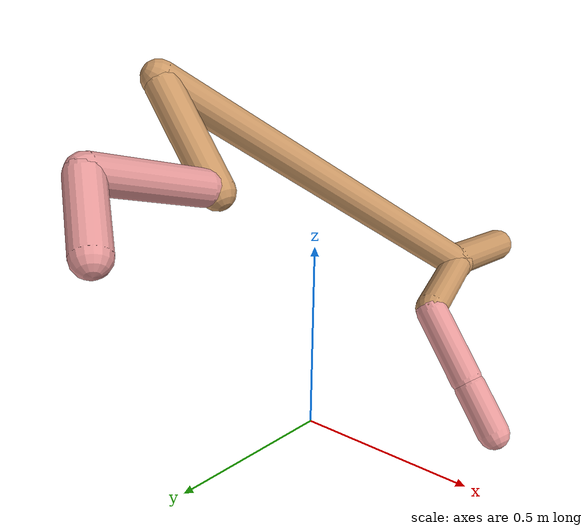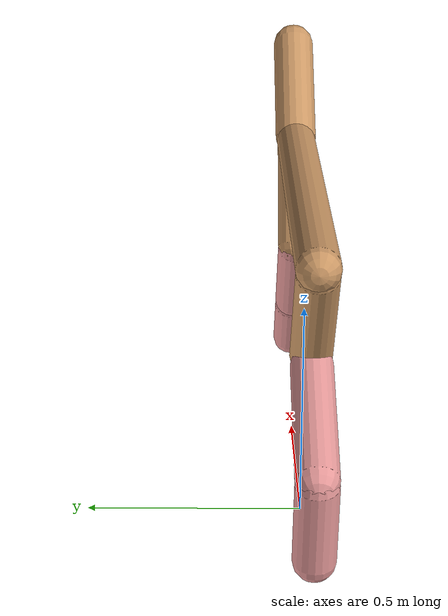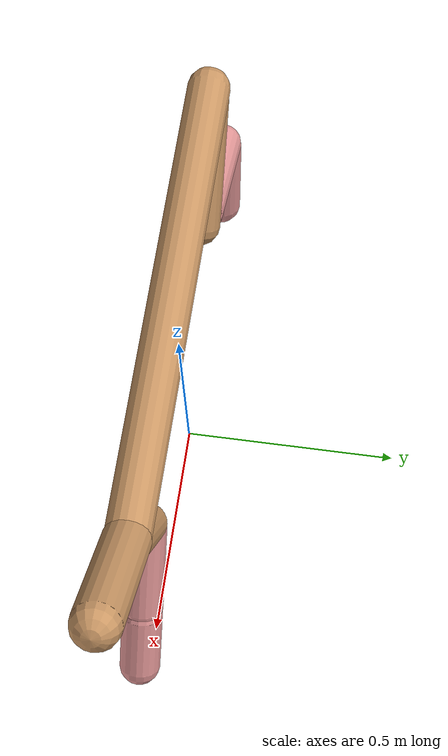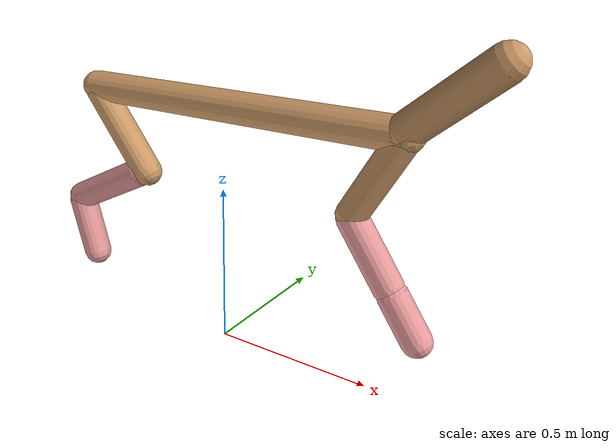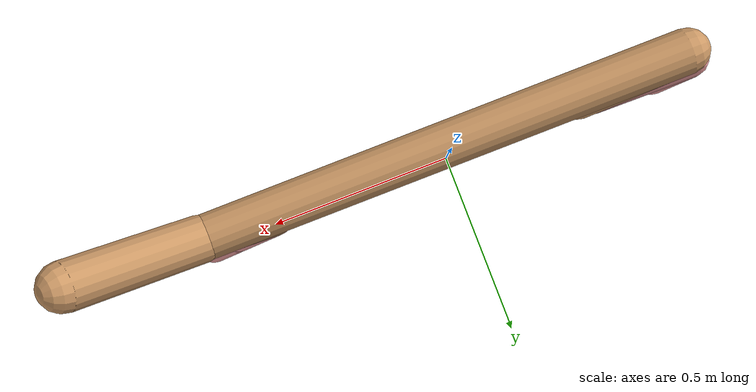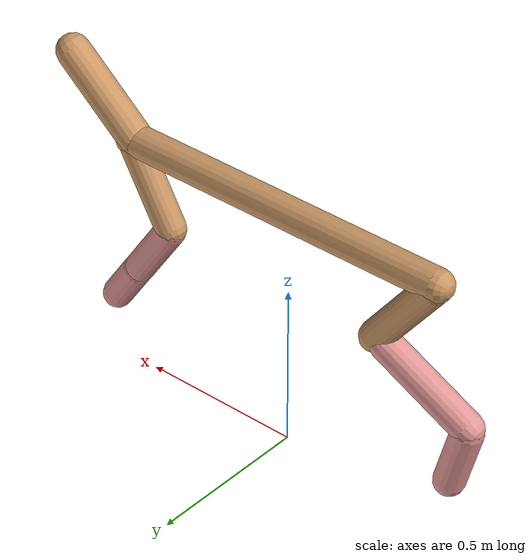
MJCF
<mujoco model="cheetah">
  <compiler angle="radian" coordinate="local" inertiafromgeom="true" settotalmass="14" />
  <default>
    <joint armature=".1" damping=".01" limited="true" solimplimit="0 .8 .03" solreflimit=".02 1" stiffness="8" />
    <geom conaffinity="0" condim="3" contype="1" friction="0.8 .1 .1" rgba="0.8 0.6 .4 1" solimp="0.0 0.8 0.01" solref="0.02 1" />
    <motor ctrllimited="true" ctrlrange="-1 1" />
  </default>
  <size nstack="300000" nuser_geom="1" />
  <option gravity="0 0 -9.81" timestep="0.01" />
  <worldbody>
    <body name="torso" pos="0.0 0.0 0.7571716974610728">
      <joint armature="0" axis="1 0 0" damping="0" limited="false" name="ignorex" pos="0 0 0" stiffness="0" type="slide" />
      <joint armature="0" axis="0 0 1" damping="0" limited="false" name="ignorez" pos="0 0 0" stiffness="0" type="slide" />
      <joint armature="0" axis="0 1 0" damping="0" limited="false" name="ignorey" pos="0 0 0" stiffness="0" type="hinge" />
      <geom fromto="-0.5 0.0 0.0 0.5659745960217557 0.0 0.0" name="torso" size="0.047577723361521156" type="capsule" />
      <geom axisangle="0 1 0 .87" name="head" pos="0.6659745960217557 0.0 0.1" size="0.04987765575532455 0.15" type="capsule" />

      <body name="bthigh" pos="-.5 0 0">
        <joint axis="0 1 0" damping="6" name="bthigh" pos="0 0 0" range="-.52 1.05" stiffness="240" type="hinge" />
        <geom axisangle="0 1 0 -3.8" name="bthigh" pos="0.10428342277789711 0.0 -0.13556844961126624" size="0.04630404164796543 0.15202533570496235" type="capsule" />
        <body name="bshin" pos="0.1685668455557942 0.0 -0.26113689922253247">
          <joint axis="0 1 0" damping="4.5" name="bshin" pos="0 0 0" range="-.785 .785" stiffness="180" type="hinge" />
          <geom axisangle="0 1 0 -2.03" name="bshin" pos="-0.14650032891078024 0.0 -0.07325016445539012" rgba="0.9 0.6 0.6 1" size="0.04630404164796543 0.15726758866030588" type="capsule" />
          <body name="bfoot" pos="-0.2930006578215605 0.0 -0.14650032891078024">
            <joint axis="0 1 0" damping="3" name="bfoot" pos="0 0 0" range="-.4 .785" stiffness="120" type="hinge" />
            <geom axisangle="0 1 0 -.27" name="bfoot" pos="0.03134567417553721 0.0 -0.10135101316757031" rgba="0.9 0.6 0.6 1" size="0.04630404164796543 0.09855435556045836" type="capsule" />
            <inertial mass="10" />
          </body>
        </body>
      </body>
      <body name="fthigh" pos="0.5659745960217557 0.0 0.0">
        <joint axis="0 1 0" damping="4.5" name="fthigh" pos="0 0 0" range="-1.5 0.8" stiffness="180" type="hinge" />
        <geom axisangle="0 1 0 .52" name="fthigh" pos="-0.07137621472582488 0.0 -0.12235922524427122" size="0.044640721493232394 0.13573128371371115" type="capsule" />
        <body name="fshin" pos="-0.14275242945164976 0.0 -0.24471845048854243">
          <joint axis="0 1 0" damping="3" name="fshin" pos="0 0 0" range="-1.2 1.1" stiffness="120" type="hinge" />
          <geom axisangle="0 1 0 -.6" name="fshin" pos="0.06627450320533958 0.0 -0.09176469674585479" rgba="0.9 0.6 0.6 1" size="0.044640721493232394 0.10817681258386001" type="capsule" />
          <body name="ffoot" pos="0.13254900641067915 0.0 -0.18352939349170957">
            <joint axis="0 1 0" damping="1.5" name="ffoot" pos="0 0 0" range="-3.1 -0.3" stiffness="60" type="hinge" />
            <geom axisangle="0 1 0 -.6" name="ffoot" pos="0.04577734863274749 0.0 -0.07120920898427388" rgba="0.9 0.6 0.6 1" size="0.044640721493232394 0.0714375177440585" type="capsule" />
            <inertial mass="10" />
          </body>
        </body>
      </body>
    </body>
  </worldbody>
  <actuator>
    <motor gear="120" joint="bthigh" name="bthigh" />
    <motor gear="90" joint="bshin" name="bshin" />
    <motor gear="60" joint="bfoot" name="bfoot" />
    <motor gear="120" joint="fthigh" name="fthigh" />
    <motor gear="60" joint="fshin" name="fshin" />
    <motor gear="30" joint="ffoot" name="ffoot" />
  </actuator>
</mujoco>
